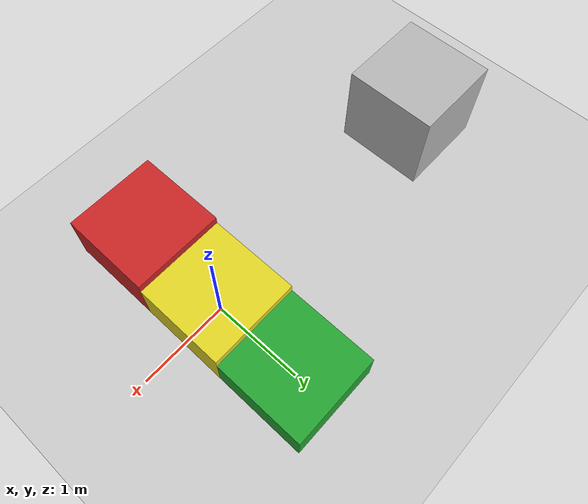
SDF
<sdf version="1.3">
 <world name="default">
  <include><uri>model://ground_plane</uri></include>
  <include><uri>model://sun</uri></include>
  <model name="rotated_box">
   <pose>-3 0 0.5 -1.5708 0 0</pose>
   <link name="link">
    <collision name="collision"><geometry><box><size>1 1 1</size></box></geometry></collision>
    <visual name="visual"><geometry><box><size>1 1 1</size></box></geometry></visual>
    <sensor name="cam1" type="camera">
     <pose>0 0 0  1.5708 0 0</pose>
     <update_rate>15</update_rate>
     <camera name="left">
      <horizontal_fov>1.3962634</horizontal_fov>
      <image><width>1024</width><height>544</height><format>R8G8B8</format></image>
      <clip><near>0.02</near><far>100</far></clip>
     </camera>
    </sensor>
    <sensor name="cam2" type="camera">
     <pose>0 0 0  0.7854 0 0</pose>
     <update_rate>15</update_rate>
     <camera name="left">
      <pose>0 0 0  0.7854 0 0</pose>
      <horizontal_fov>1.3962634</horizontal_fov>
      <image><width>1024</width><height>544</height><format>B8G8R8</format></image>
      <clip><near>0.02</near><far>100</far></clip>
     </camera>
    </sensor>
    <sensor name="cam3" type="camera">
     <update_rate>15</update_rate>
     <camera name="left">
      <pose>0 0 0  1.5708 0 0</pose>
      <horizontal_fov>1.3962634</horizontal_fov>
      <image><width>1024</width><height>544</height><format>BAYER_BGGR8</format></image>
      <clip><near>0.02</near><far>100</far></clip>
     </camera>
    </sensor>
   </link>
  </model>
  <model name="box1">
   <pose>0 0 0.25 0 0 0</pose>
   <link name="link">
    <collision name="collision"><geometry><box><size>1 1 0.5</size></box></geometry></collision>
    <visual name="visual">
     <geometry><box><size>1 1 0.5</size></box></geometry>
     <material>
      <script><uri>file://media/materials/scripts/gazebo.material</uri><name>Gazebo/Yellow</name></script>
     </material>
    </visual>
   </link>
  </model>
  <model name="box2">
   <pose>0 1 0.2 0 0 0</pose>
   <link name="link">
    <collision name="collision"><geometry><box><size>1 1 0.4</size></box></geometry></collision>
    <visual name="visual">
     <geometry><box><size>1 1 0.4</size></box></geometry>
     <material>
      <script><uri>file://media/materials/scripts/gazebo.material</uri><name>Gazebo/Green</name></script>
     </material>
    </visual>
   </link>
  </model>
  <model name="box3">
   <pose>0 -1 0.3 0 0 0</pose>
   <link name="link">
    <collision name="collision"><geometry><box><size>1 1 0.6</size></box></geometry></collision>
    <visual name="visual">
     <geometry><box><size>1 1 0.6</size></box></geometry>
     <material>
      <script><uri>file://media/materials/scripts/gazebo.material</uri><name>Gazebo/Red</name></script>
     </material>
    </visual>
   </link>
  </model>
 </world>
</sdf>
